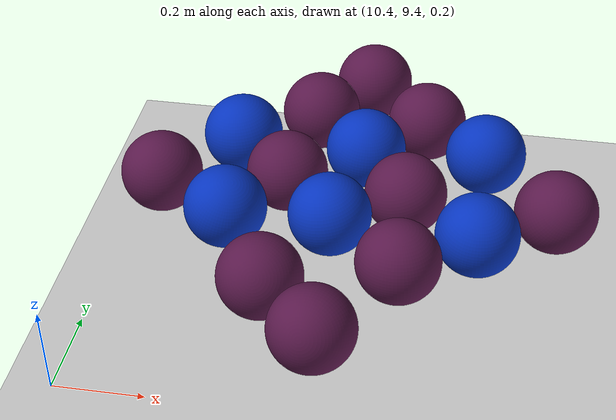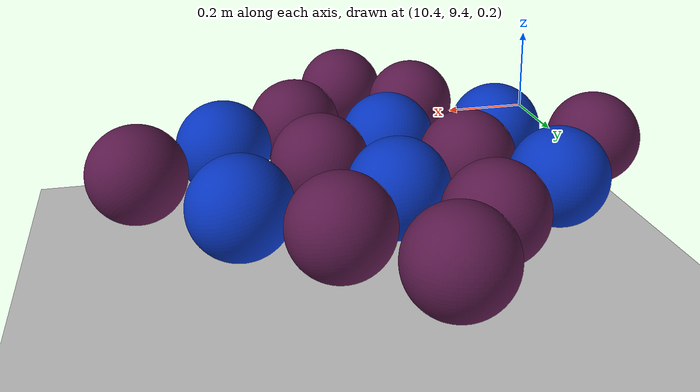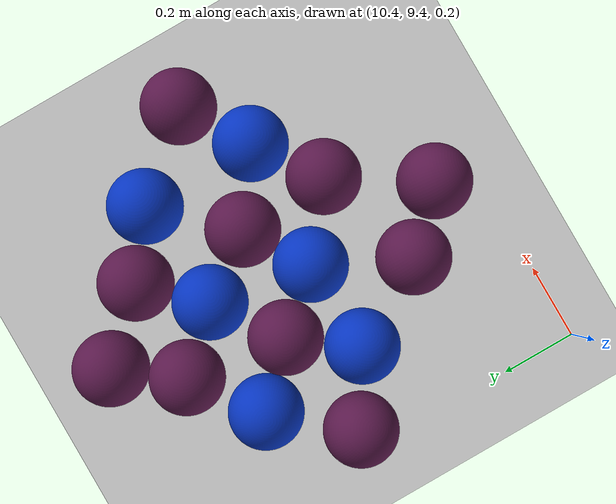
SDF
<sdf version="1.7">
 <world name="default">
  <light name="sun" type="directional">
   <pose>0 0 10 0 -0 0</pose>
   <diffuse>0.8 0.8 0.8 1</diffuse>
   <specular>0.2 0.2 0.2 1</specular>
   <attenuation>
    <range>1000</range>
    <constant>0.9</constant>
    <linear>0.01</linear>
    <quadratic>0.001</quadratic>
   </attenuation>
   <direction>-0.5 0.1 -0.9</direction>
   <spot><inner_angle>0</inner_angle><outer_angle>0</outer_angle><falloff>0</falloff></spot>
  </light>
  <model name="ground_plane">
   <static>1</static>
   <link name="link">
    <collision name="collision">
     <geometry><plane><normal>0 0 1</normal><size>100 100</size></plane></geometry>
     <surface>
      <contact><collide_bitmask>65535</collide_bitmask></contact>
      <friction><ode><mu>100</mu><mu2>50</mu2></ode></friction>
     </surface>
    </collision>
    <visual name="visual">
     <cast_shadows>0</cast_shadows>
     <geometry><plane><normal>0 0 1</normal><size>100 100</size></plane></geometry>
     <material>
      <script><uri>file://media/materials/scripts/gazebo.material</uri><name>Gazebo/Grey</name></script>
     </material>
    </visual>
   </link>
  </model>
  <gravity>0 0 -9.8</gravity>
  <magnetic_field>6e-06 2.3e-05 -4.2e-05</magnetic_field>
  <atmosphere type="adiabatic"/>
  <physics type="ode">
   <max_step_size>0.001</max_step_size>
   <real_time_factor>1</real_time_factor>
   <real_time_update_rate>1000</real_time_update_rate>
  </physics>
  <scene><ambient>0.4 0.4 0.4 1</ambient><background>0.7 0.7 0.7 1</background><shadows>1</shadows></scene>
  <audio><device>default</device></audio>
  <spherical_coordinates>
   <surface_model>EARTH_WGS84</surface_model>
   <latitude_deg>0</latitude_deg>
   <longitude_deg>0</longitude_deg>
   <elevation>0</elevation>
   <heading_deg>0</heading_deg>
  </spherical_coordinates>
  <model name="ball_empty_0">
   <link name="link_1">
    <inertial>
     <mass>1</mass>
     <inertia>
      <ixx>0.166667</ixx>
      <ixy>0</ixy>
      <ixz>0</ixz>
      <iyy>0.166667</iyy>
      <iyz>0</iyz>
      <izz>0.166667</izz>
     </inertia>
    </inertial>
    <visual name="visual">
     <geometry>
      <mesh>
       <uri>/home/entity014/abu2024_ws/src/abu_description/worlds/ball_empty.dae</uri>
       <scale>1 1 1</scale>
      </mesh>
     </geometry>
    </visual>
    <collision name="collision">
     <geometry>
      <mesh>
       <uri>/home/entity014/abu2024_ws/src/abu_description/worlds/ball_empty.dae</uri>
       <scale>1 1 1</scale>
      </mesh>
     </geometry>
     <surface>
      <friction>
       <ode><mu>1</mu><mu2>1</mu2><fdir1>0 0 0</fdir1><slip1>0</slip1><slip2>0</slip2></ode>
       <torsional>
        <coefficient>1</coefficient>
        <patch_radius>0</patch_radius>
        <surface_radius>0</surface_radius>
        <use_patch_radius>1</use_patch_radius>
        <ode><slip>0</slip></ode>
       </torsional>
      </friction>
      <bounce><restitution_coefficient>0</restitution_coefficient><threshold>1e+06</threshold></bounce>
      <contact>
       <collide_without_contact>0</collide_without_contact>
       <collide_without_contact_bitmask>1</collide_without_contact_bitmask>
       <collide_bitmask>1</collide_bitmask>
       <ode>
        <soft_cfm>0</soft_cfm>
        <soft_erp>0.2</soft_erp>
        <kp>1e+13</kp>
        <kd>1</kd>
        <max_vel>0.01</max_vel>
        <min_depth>0</min_depth>
       </ode>
       <bullet>
        <split_impulse>1</split_impulse>
        <split_impulse_penetration_threshold>-0.01</split_impulse_penetration_threshold>
        <soft_cfm>0</soft_cfm>
        <soft_erp>0.2</soft_erp>
        <kp>1e+13</kp>
        <kd>1</kd>
       </bullet>
      </contact>
     </surface>
    </collision>
   </link>
   <static>0</static>
   <pose>10.9242 9.52841 0.322529 1.07114 -0.089637 -0.085996</pose>
  </model>
  <model name="ball_blue_5">
   <link name="link_1">
    <inertial>
     <mass>1</mass>
     <inertia>
      <ixx>0.166667</ixx>
      <ixy>0</ixy>
      <ixz>0</ixz>
      <iyy>0.166667</iyy>
      <iyz>0</iyz>
      <izz>0.166667</izz>
     </inertia>
    </inertial>
    <visual name="visual">
     <geometry>
      <mesh>
       <uri>/home/entity014/abu2024_ws/src/abu_description/worlds/ball_blue.dae</uri>
       <scale>1 1 1</scale>
      </mesh>
     </geometry>
    </visual>
    <collision name="collision">
     <geometry>
      <mesh>
       <uri>/home/entity014/abu2024_ws/src/abu_description/worlds/ball_blue.dae</uri>
       <scale>1 1 1</scale>
      </mesh>
     </geometry>
     <surface>
      <friction>
       <ode><mu>1</mu><mu2>1</mu2><fdir1>0 0 0</fdir1><slip1>0</slip1><slip2>0</slip2></ode>
       <torsional>
        <coefficient>1</coefficient>
        <patch_radius>0</patch_radius>
        <surface_radius>0</surface_radius>
        <use_patch_radius>1</use_patch_radius>
        <ode><slip>0</slip></ode>
       </torsional>
      </friction>
      <bounce><restitution_coefficient>0</restitution_coefficient><threshold>1e+06</threshold></bounce>
      <contact>
       <collide_without_contact>0</collide_without_contact>
       <collide_without_contact_bitmask>1</collide_without_contact_bitmask>
       <collide_bitmask>1</collide_bitmask>
       <ode>
        <soft_cfm>0</soft_cfm>
        <soft_erp>0.2</soft_erp>
        <kp>1e+13</kp>
        <kd>1</kd>
        <max_vel>0.01</max_vel>
        <min_depth>0</min_depth>
       </ode>
       <bullet>
        <split_impulse>1</split_impulse>
        <split_impulse_penetration_threshold>-0.01</split_impulse_penetration_threshold>
        <soft_cfm>0</soft_cfm>
        <soft_erp>0.2</soft_erp>
        <kp>1e+13</kp>
        <kd>1</kd>
       </bullet>
      </contact>
     </surface>
    </collision>
   </link>
   <static>0</static>
   <pose>11.2335 9.87764 0.322565 0.158713 0.135175 -0.516315</pose>
  </model>
  <model name="ball_empty_0_clone">
   <link name="link_1">
    <inertial>
     <mass>1</mass>
     <inertia>
      <ixx>0.166667</ixx>
      <ixy>0</ixy>
      <ixz>0</ixz>
      <iyy>0.166667</iyy>
      <iyz>0</iyz>
      <izz>0.166667</izz>
     </inertia>
    </inertial>
    <visual name="visual">
     <geometry>
      <mesh>
       <uri>/home/entity014/abu2024_ws/src/abu_description/worlds/ball_empty.dae</uri>
       <scale>1 1 1</scale>
      </mesh>
     </geometry>
    </visual>
    <collision name="collision">
     <geometry>
      <mesh>
       <uri>/home/entity014/abu2024_ws/src/abu_description/worlds/ball_empty.dae</uri>
       <scale>1 1 1</scale>
      </mesh>
     </geometry>
     <surface>
      <friction>
       <ode><mu>1</mu><mu2>1</mu2><fdir1>0 0 0</fdir1><slip1>0</slip1><slip2>0</slip2></ode>
       <torsional>
        <coefficient>1</coefficient>
        <patch_radius>0</patch_radius>
        <surface_radius>0</surface_radius>
        <use_patch_radius>1</use_patch_radius>
        <ode><slip>0</slip></ode>
       </torsional>
      </friction>
      <bounce><restitution_coefficient>0</restitution_coefficient><threshold>1e+06</threshold></bounce>
      <contact>
       <collide_without_contact>0</collide_without_contact>
       <collide_without_contact_bitmask>1</collide_without_contact_bitmask>
       <collide_bitmask>1</collide_bitmask>
       <ode>
        <soft_cfm>0</soft_cfm>
        <soft_erp>0.2</soft_erp>
        <kp>1e+13</kp>
        <kd>1</kd>
        <max_vel>0.01</max_vel>
        <min_depth>0</min_depth>
       </ode>
       <bullet>
        <split_impulse>1</split_impulse>
        <split_impulse_penetration_threshold>-0.01</split_impulse_penetration_threshold>
        <soft_cfm>0</soft_cfm>
        <soft_erp>0.2</soft_erp>
        <kp>1e+13</kp>
        <kd>1</kd>
       </bullet>
      </contact>
     </surface>
    </collision>
   </link>
   <static>0</static>
   <pose>10.7866 9.66794 0.322538 0.91365 -0.016456 0.033509</pose>
  </model>
  <model name="ball_empty_0_clone_0">
   <link name="link_1">
    <inertial>
     <mass>1</mass>
     <inertia>
      <ixx>0.166667</ixx>
      <ixy>0</ixy>
      <ixz>0</ixz>
      <iyy>0.166667</iyy>
      <iyz>0</iyz>
      <izz>0.166667</izz>
     </inertia>
    </inertial>
    <visual name="visual">
     <geometry>
      <mesh>
       <uri>/home/entity014/abu2024_ws/src/abu_description/worlds/ball_empty.dae</uri>
       <scale>1 1 1</scale>
      </mesh>
     </geometry>
    </visual>
    <collision name="collision">
     <geometry>
      <mesh>
       <uri>/home/entity014/abu2024_ws/src/abu_description/worlds/ball_empty.dae</uri>
       <scale>1 1 1</scale>
      </mesh>
     </geometry>
     <surface>
      <friction>
       <ode><mu>1</mu><mu2>1</mu2><fdir1>0 0 0</fdir1><slip1>0</slip1><slip2>0</slip2></ode>
       <torsional>
        <coefficient>1</coefficient>
        <patch_radius>0</patch_radius>
        <surface_radius>0</surface_radius>
        <use_patch_radius>1</use_patch_radius>
        <ode><slip>0</slip></ode>
       </torsional>
      </friction>
      <bounce><restitution_coefficient>0</restitution_coefficient><threshold>1e+06</threshold></bounce>
      <contact>
       <collide_without_contact>0</collide_without_contact>
       <collide_without_contact_bitmask>1</collide_without_contact_bitmask>
       <collide_bitmask>1</collide_bitmask>
       <ode>
        <soft_cfm>0</soft_cfm>
        <soft_erp>0.2</soft_erp>
        <kp>1e+13</kp>
        <kd>1</kd>
        <max_vel>0.01</max_vel>
        <min_depth>0</min_depth>
       </ode>
       <bullet>
        <split_impulse>1</split_impulse>
        <split_impulse_penetration_threshold>-0.01</split_impulse_penetration_threshold>
        <soft_cfm>0</soft_cfm>
        <soft_erp>0.2</soft_erp>
        <kp>1e+13</kp>
        <kd>1</kd>
       </bullet>
      </contact>
     </surface>
    </collision>
   </link>
   <static>0</static>
   <pose>11.0716 9.7614 0.322554 -0.028878 -0.02828 -0.085092</pose>
  </model>
  <model name="ball_empty_0_clone_1">
   <link name="link_1">
    <inertial>
     <mass>1</mass>
     <inertia>
      <ixx>0.166667</ixx>
      <ixy>0</ixy>
      <ixz>0</ixz>
      <iyy>0.166667</iyy>
      <iyz>0</iyz>
      <izz>0.166667</izz>
     </inertia>
    </inertial>
    <visual name="visual">
     <geometry>
      <mesh>
       <uri>/home/entity014/abu2024_ws/src/abu_description/worlds/ball_empty.dae</uri>
       <scale>1 1 1</scale>
      </mesh>
     </geometry>
    </visual>
    <collision name="collision">
     <geometry>
      <mesh>
       <uri>/home/entity014/abu2024_ws/src/abu_description/worlds/ball_empty.dae</uri>
       <scale>1 1 1</scale>
      </mesh>
     </geometry>
     <surface>
      <friction>
       <ode><mu>1</mu><mu2>1</mu2><fdir1>0 0 0</fdir1><slip1>0</slip1><slip2>0</slip2></ode>
       <torsional>
        <coefficient>1</coefficient>
        <patch_radius>0</patch_radius>
        <surface_radius>0</surface_radius>
        <use_patch_radius>1</use_patch_radius>
        <ode><slip>0</slip></ode>
       </torsional>
      </friction>
      <bounce><restitution_coefficient>0</restitution_coefficient><threshold>1e+06</threshold></bounce>
      <contact>
       <collide_without_contact>0</collide_without_contact>
       <collide_without_contact_bitmask>1</collide_without_contact_bitmask>
       <collide_bitmask>1</collide_bitmask>
       <ode>
        <soft_cfm>0</soft_cfm>
        <soft_erp>0.2</soft_erp>
        <kp>1e+13</kp>
        <kd>1</kd>
        <max_vel>0.01</max_vel>
        <min_depth>0</min_depth>
       </ode>
       <bullet>
        <split_impulse>1</split_impulse>
        <split_impulse_penetration_threshold>-0.01</split_impulse_penetration_threshold>
        <soft_cfm>0</soft_cfm>
        <soft_erp>0.2</soft_erp>
        <kp>1e+13</kp>
        <kd>1</kd>
       </bullet>
      </contact>
     </surface>
    </collision>
   </link>
   <static>0</static>
   <pose>10.4818 9.99502 0.322538 0.247082 -0.268309 0.812734</pose>
  </model>
  <model name="ball_empty_0_clone_2">
   <link name="link_1">
    <inertial>
     <mass>1</mass>
     <inertia>
      <ixx>0.166667</ixx>
      <ixy>0</ixy>
      <ixz>0</ixz>
      <iyy>0.166667</iyy>
      <iyz>0</iyz>
      <izz>0.166667</izz>
     </inertia>
    </inertial>
    <visual name="visual">
     <geometry>
      <mesh>
       <uri>/home/entity014/abu2024_ws/src/abu_description/worlds/ball_empty.dae</uri>
       <scale>1 1 1</scale>
      </mesh>
     </geometry>
    </visual>
    <collision name="collision">
     <geometry>
      <mesh>
       <uri>/home/entity014/abu2024_ws/src/abu_description/worlds/ball_empty.dae</uri>
       <scale>1 1 1</scale>
      </mesh>
     </geometry>
     <surface>
      <friction>
       <ode><mu>1</mu><mu2>1</mu2><fdir1>0 0 0</fdir1><slip1>0</slip1><slip2>0</slip2></ode>
       <torsional>
        <coefficient>1</coefficient>
        <patch_radius>0</patch_radius>
        <surface_radius>0</surface_radius>
        <use_patch_radius>1</use_patch_radius>
        <ode><slip>0</slip></ode>
       </torsional>
      </friction>
      <bounce><restitution_coefficient>0</restitution_coefficient><threshold>1e+06</threshold></bounce>
      <contact>
       <collide_without_contact>0</collide_without_contact>
       <collide_without_contact_bitmask>1</collide_without_contact_bitmask>
       <collide_bitmask>1</collide_bitmask>
       <ode>
        <soft_cfm>0</soft_cfm>
        <soft_erp>0.2</soft_erp>
        <kp>1e+13</kp>
        <kd>1</kd>
        <max_vel>0.01</max_vel>
        <min_depth>0</min_depth>
       </ode>
       <bullet>
        <split_impulse>1</split_impulse>
        <split_impulse_penetration_threshold>-0.01</split_impulse_penetration_threshold>
        <soft_cfm>0</soft_cfm>
        <soft_erp>0.2</soft_erp>
        <kp>1e+13</kp>
        <kd>1</kd>
       </bullet>
      </contact>
     </surface>
    </collision>
   </link>
   <static>0</static>
   <pose>10.7732 10.0429 0.322555 -0.091461 -0.083872 0.491186</pose>
  </model>
  <model name="ball_empty_0_clone_3">
   <link name="link_1">
    <inertial>
     <mass>1</mass>
     <inertia>
      <ixx>0.166667</ixx>
      <ixy>0</ixy>
      <ixz>0</ixz>
      <iyy>0.166667</iyy>
      <iyz>0</iyz>
      <izz>0.166667</izz>
     </inertia>
    </inertial>
    <visual name="visual">
     <geometry>
      <mesh>
       <uri>/home/entity014/abu2024_ws/src/abu_description/worlds/ball_empty.dae</uri>
       <scale>1 1 1</scale>
      </mesh>
     </geometry>
    </visual>
    <collision name="collision">
     <geometry>
      <mesh>
       <uri>/home/entity014/abu2024_ws/src/abu_description/worlds/ball_empty.dae</uri>
       <scale>1 1 1</scale>
      </mesh>
     </geometry>
     <surface>
      <friction>
       <ode><mu>1</mu><mu2>1</mu2><fdir1>0 0 0</fdir1><slip1>0</slip1><slip2>0</slip2></ode>
       <torsional>
        <coefficient>1</coefficient>
        <patch_radius>0</patch_radius>
        <surface_radius>0</surface_radius>
        <use_patch_radius>1</use_patch_radius>
        <ode><slip>0</slip></ode>
       </torsional>
      </friction>
      <bounce><restitution_coefficient>0</restitution_coefficient><threshold>1e+06</threshold></bounce>
      <contact>
       <collide_without_contact>0</collide_without_contact>
       <collide_without_contact_bitmask>1</collide_without_contact_bitmask>
       <collide_bitmask>1</collide_bitmask>
       <ode>
        <soft_cfm>0</soft_cfm>
        <soft_erp>0.2</soft_erp>
        <kp>1e+13</kp>
        <kd>1</kd>
        <max_vel>0.01</max_vel>
        <min_depth>0</min_depth>
       </ode>
       <bullet>
        <split_impulse>1</split_impulse>
        <split_impulse_penetration_threshold>-0.01</split_impulse_penetration_threshold>
        <soft_cfm>0</soft_cfm>
        <soft_erp>0.2</soft_erp>
        <kp>1e+13</kp>
        <kd>1</kd>
       </bullet>
      </contact>
     </surface>
    </collision>
   </link>
   <static>0</static>
   <pose>11.0587 10.0007 0.322609 0.213184 0.263898 -2.08329</pose>
  </model>
  <model name="ball_empty_0_clone_4">
   <link name="link_1">
    <inertial>
     <mass>1</mass>
     <inertia>
      <ixx>0.166667</ixx>
      <ixy>0</ixy>
      <ixz>0</ixz>
      <iyy>0.166667</iyy>
      <iyz>0</iyz>
      <izz>0.166667</izz>
     </inertia>
    </inertial>
    <visual name="visual">
     <geometry>
      <mesh>
       <uri>/home/entity014/abu2024_ws/src/abu_description/worlds/ball_empty.dae</uri>
       <scale>1 1 1</scale>
      </mesh>
     </geometry>
    </visual>
    <collision name="collision">
     <geometry>
      <mesh>
       <uri>/home/entity014/abu2024_ws/src/abu_description/worlds/ball_empty.dae</uri>
       <scale>1 1 1</scale>
      </mesh>
     </geometry>
     <surface>
      <friction>
       <ode><mu>1</mu><mu2>1</mu2><fdir1>0 0 0</fdir1><slip1>0</slip1><slip2>0</slip2></ode>
       <torsional>
        <coefficient>1</coefficient>
        <patch_radius>0</patch_radius>
        <surface_radius>0</surface_radius>
        <use_patch_radius>1</use_patch_radius>
        <ode><slip>0</slip></ode>
       </torsional>
      </friction>
      <bounce><restitution_coefficient>0</restitution_coefficient><threshold>1e+06</threshold></bounce>
      <contact>
       <collide_without_contact>0</collide_without_contact>
       <collide_without_contact_bitmask>1</collide_without_contact_bitmask>
       <collide_bitmask>1</collide_bitmask>
       <ode>
        <soft_cfm>0</soft_cfm>
        <soft_erp>0.2</soft_erp>
        <kp>1e+13</kp>
        <kd>1</kd>
        <max_vel>0.01</max_vel>
        <min_depth>0</min_depth>
       </ode>
       <bullet>
        <split_impulse>1</split_impulse>
        <split_impulse_penetration_threshold>-0.01</split_impulse_penetration_threshold>
        <soft_cfm>0</soft_cfm>
        <soft_erp>0.2</soft_erp>
        <kp>1e+13</kp>
        <kd>1</kd>
       </bullet>
      </contact>
     </surface>
    </collision>
   </link>
   <static>0</static>
   <pose>11.403 9.98631 0.322598 0.479191 0.536762 -0.200918</pose>
  </model>
  <model name="ball_empty_0_clone_5">
   <link name="link_1">
    <inertial>
     <mass>1</mass>
     <inertia>
      <ixx>0.166667</ixx>
      <ixy>0</ixy>
      <ixz>0</ixz>
      <iyy>0.166667</iyy>
      <iyz>0</iyz>
      <izz>0.166667</izz>
     </inertia>
    </inertial>
    <visual name="visual">
     <geometry>
      <mesh>
       <uri>/home/entity014/abu2024_ws/src/abu_description/worlds/ball_empty.dae</uri>
       <scale>1 1 1</scale>
      </mesh>
     </geometry>
    </visual>
    <collision name="collision">
     <geometry>
      <mesh>
       <uri>/home/entity014/abu2024_ws/src/abu_description/worlds/ball_empty.dae</uri>
       <scale>1 1 1</scale>
      </mesh>
     </geometry>
     <surface>
      <friction>
       <ode><mu>1</mu><mu2>1</mu2><fdir1>0 0 0</fdir1><slip1>0</slip1><slip2>0</slip2></ode>
       <torsional>
        <coefficient>1</coefficient>
        <patch_radius>0</patch_radius>
        <surface_radius>0</surface_radius>
        <use_patch_radius>1</use_patch_radius>
        <ode><slip>0</slip></ode>
       </torsional>
      </friction>
      <bounce><restitution_coefficient>0</restitution_coefficient><threshold>1e+06</threshold></bounce>
      <contact>
       <collide_without_contact>0</collide_without_contact>
       <collide_without_contact_bitmask>1</collide_without_contact_bitmask>
       <collide_bitmask>1</collide_bitmask>
       <ode>
        <soft_cfm>0</soft_cfm>
        <soft_erp>0.2</soft_erp>
        <kp>1e+13</kp>
        <kd>1</kd>
        <max_vel>0.01</max_vel>
        <min_depth>0</min_depth>
       </ode>
       <bullet>
        <split_impulse>1</split_impulse>
        <split_impulse_penetration_threshold>-0.01</split_impulse_penetration_threshold>
        <soft_cfm>0</soft_cfm>
        <soft_erp>0.2</soft_erp>
        <kp>1e+13</kp>
        <kd>1</kd>
       </bullet>
      </contact>
     </surface>
    </collision>
   </link>
   <static>0</static>
   <pose>10.8094 10.3038 0.322541 0.166108 0.229963 0.124252</pose>
  </model>
  <model name="ball_empty_0_clone_6">
   <link name="link_1">
    <inertial>
     <mass>1</mass>
     <inertia>
      <ixx>0.166667</ixx>
      <ixy>0</ixy>
      <ixz>0</ixz>
      <iyy>0.166667</iyy>
      <iyz>0</iyz>
      <izz>0.166667</izz>
     </inertia>
    </inertial>
    <visual name="visual">
     <geometry>
      <mesh>
       <uri>/home/entity014/abu2024_ws/src/abu_description/worlds/ball_empty.dae</uri>
       <scale>1 1 1</scale>
      </mesh>
     </geometry>
    </visual>
    <collision name="collision">
     <geometry>
      <mesh>
       <uri>/home/entity014/abu2024_ws/src/abu_description/worlds/ball_empty.dae</uri>
       <scale>1 1 1</scale>
      </mesh>
     </geometry>
     <surface>
      <friction>
       <ode><mu>1</mu><mu2>1</mu2><fdir1>0 0 0</fdir1><slip1>0</slip1><slip2>0</slip2></ode>
       <torsional>
        <coefficient>1</coefficient>
        <patch_radius>0</patch_radius>
        <surface_radius>0</surface_radius>
        <use_patch_radius>1</use_patch_radius>
        <ode><slip>0</slip></ode>
       </torsional>
      </friction>
      <bounce><restitution_coefficient>0</restitution_coefficient><threshold>1e+06</threshold></bounce>
      <contact>
       <collide_without_contact>0</collide_without_contact>
       <collide_without_contact_bitmask>1</collide_without_contact_bitmask>
       <collide_bitmask>1</collide_bitmask>
       <ode>
        <soft_cfm>0</soft_cfm>
        <soft_erp>0.2</soft_erp>
        <kp>1e+13</kp>
        <kd>1</kd>
        <max_vel>0.01</max_vel>
        <min_depth>0</min_depth>
       </ode>
       <bullet>
        <split_impulse>1</split_impulse>
        <split_impulse_penetration_threshold>-0.01</split_impulse_penetration_threshold>
        <soft_cfm>0</soft_cfm>
        <soft_erp>0.2</soft_erp>
        <kp>1e+13</kp>
        <kd>1</kd>
       </bullet>
      </contact>
     </surface>
    </collision>
   </link>
   <static>0</static>
   <pose>11.076 10.2977 0.322568 0.260319 0.089567 -0.035736</pose>
  </model>
  <model name="ball_empty_0_clone_7">
   <link name="link_1">
    <inertial>
     <mass>1</mass>
     <inertia>
      <ixx>0.166667</ixx>
      <ixy>0</ixy>
      <ixz>0</ixz>
      <iyy>0.166667</iyy>
      <iyz>0</iyz>
      <izz>0.166667</izz>
     </inertia>
    </inertial>
    <visual name="visual">
     <geometry>
      <mesh>
       <uri>/home/entity014/abu2024_ws/src/abu_description/worlds/ball_empty.dae</uri>
       <scale>1 1 1</scale>
      </mesh>
     </geometry>
    </visual>
    <collision name="collision">
     <geometry>
      <mesh>
       <uri>/home/entity014/abu2024_ws/src/abu_description/worlds/ball_empty.dae</uri>
       <scale>1 1 1</scale>
      </mesh>
     </geometry>
     <surface>
      <friction>
       <ode><mu>1</mu><mu2>1</mu2><fdir1>0 0 0</fdir1><slip1>0</slip1><slip2>0</slip2></ode>
       <torsional>
        <coefficient>1</coefficient>
        <patch_radius>0</patch_radius>
        <surface_radius>0</surface_radius>
        <use_patch_radius>1</use_patch_radius>
        <ode><slip>0</slip></ode>
       </torsional>
      </friction>
      <bounce><restitution_coefficient>0</restitution_coefficient><threshold>1e+06</threshold></bounce>
      <contact>
       <collide_without_contact>0</collide_without_contact>
       <collide_without_contact_bitmask>1</collide_without_contact_bitmask>
       <collide_bitmask>1</collide_bitmask>
       <ode>
        <soft_cfm>0</soft_cfm>
        <soft_erp>0.2</soft_erp>
        <kp>1e+13</kp>
        <kd>1</kd>
        <max_vel>0.01</max_vel>
        <min_depth>0</min_depth>
       </ode>
       <bullet>
        <split_impulse>1</split_impulse>
        <split_impulse_penetration_threshold>-0.01</split_impulse_penetration_threshold>
        <soft_cfm>0</soft_cfm>
        <soft_erp>0.2</soft_erp>
        <kp>1e+13</kp>
        <kd>1</kd>
       </bullet>
      </contact>
     </surface>
    </collision>
   </link>
   <static>0</static>
   <pose>10.9231 10.4565 0.322544 0.023178 -0.032823 -0.028501</pose>
  </model>
  <model name="ball_blue_5_clone">
   <link name="link_1">
    <inertial>
     <mass>1</mass>
     <inertia>
      <ixx>0.166667</ixx>
      <ixy>0</ixy>
      <ixz>0</ixz>
      <iyy>0.166667</iyy>
      <iyz>0</iyz>
      <izz>0.166667</izz>
     </inertia>
    </inertial>
    <visual name="visual">
     <geometry>
      <mesh>
       <uri>/home/entity014/abu2024_ws/src/abu_description/worlds/ball_blue.dae</uri>
       <scale>1 1 1</scale>
      </mesh>
     </geometry>
    </visual>
    <collision name="collision">
     <geometry>
      <mesh>
       <uri>/home/entity014/abu2024_ws/src/abu_description/worlds/ball_blue.dae</uri>
       <scale>1 1 1</scale>
      </mesh>
     </geometry>
     <surface>
      <friction>
       <ode><mu>1</mu><mu2>1</mu2><fdir1>0 0 0</fdir1><slip1>0</slip1><slip2>0</slip2></ode>
       <torsional>
        <coefficient>1</coefficient>
        <patch_radius>0</patch_radius>
        <surface_radius>0</surface_radius>
        <use_patch_radius>1</use_patch_radius>
        <ode><slip>0</slip></ode>
       </torsional>
      </friction>
      <bounce><restitution_coefficient>0</restitution_coefficient><threshold>1e+06</threshold></bounce>
      <contact>
       <collide_without_contact>0</collide_without_contact>
       <collide_without_contact_bitmask>1</collide_without_contact_bitmask>
       <collide_bitmask>1</collide_bitmask>
       <ode>
        <soft_cfm>0</soft_cfm>
        <soft_erp>0.2</soft_erp>
        <kp>1e+13</kp>
        <kd>1</kd>
        <max_vel>0.01</max_vel>
        <min_depth>0</min_depth>
       </ode>
       <bullet>
        <split_impulse>1</split_impulse>
        <split_impulse_penetration_threshold>-0.01</split_impulse_penetration_threshold>
        <soft_cfm>0</soft_cfm>
        <soft_erp>0.2</soft_erp>
        <kp>1e+13</kp>
        <kd>1</kd>
       </bullet>
      </contact>
     </surface>
    </collision>
   </link>
   <static>0</static>
   <pose>10.8986 9.89867 0.322488 -0.103766 -0.172954 0.660639</pose>
  </model>
  <model name="ball_blue_5_clone_0">
   <link name="link_1">
    <inertial>
     <mass>1</mass>
     <inertia>
      <ixx>0.166667</ixx>
      <ixy>0</ixy>
      <ixz>0</ixz>
      <iyy>0.166667</iyy>
      <iyz>0</iyz>
      <izz>0.166667</izz>
     </inertia>
    </inertial>
    <visual name="visual">
     <geometry>
      <mesh>
       <uri>/home/entity014/abu2024_ws/src/abu_description/worlds/ball_blue.dae</uri>
       <scale>1 1 1</scale>
      </mesh>
     </geometry>
    </visual>
    <collision name="collision">
     <geometry>
      <mesh>
       <uri>/home/entity014/abu2024_ws/src/abu_description/worlds/ball_blue.dae</uri>
       <scale>1 1 1</scale>
      </mesh>
     </geometry>
     <surface>
      <friction>
       <ode><mu>1</mu><mu2>1</mu2><fdir1>0 0 0</fdir1><slip1>0</slip1><slip2>0</slip2></ode>
       <torsional>
        <coefficient>1</coefficient>
        <patch_radius>0</patch_radius>
        <surface_radius>0</surface_radius>
        <use_patch_radius>1</use_patch_radius>
        <ode><slip>0</slip></ode>
       </torsional>
      </friction>
      <bounce><restitution_coefficient>0</restitution_coefficient><threshold>1e+06</threshold></bounce>
      <contact>
       <collide_without_contact>0</collide_without_contact>
       <collide_without_contact_bitmask>1</collide_without_contact_bitmask>
       <collide_bitmask>1</collide_bitmask>
       <ode>
        <soft_cfm>0</soft_cfm>
        <soft_erp>0.2</soft_erp>
        <kp>1e+13</kp>
        <kd>1</kd>
        <max_vel>0.01</max_vel>
        <min_depth>0</min_depth>
       </ode>
       <bullet>
        <split_impulse>1</split_impulse>
        <split_impulse_penetration_threshold>-0.01</split_impulse_penetration_threshold>
        <soft_cfm>0</soft_cfm>
        <soft_erp>0.2</soft_erp>
        <kp>1e+13</kp>
        <kd>1</kd>
       </bullet>
      </contact>
     </surface>
    </collision>
   </link>
   <static>0</static>
   <pose>10.6593 9.88879 0.322538 0.235526 0.278334 -0.144465</pose>
  </model>
  <model name="ball_blue_5_clone_1">
   <link name="link_1">
    <inertial>
     <mass>1</mass>
     <inertia>
      <ixx>0.166667</ixx>
      <ixy>0</ixy>
      <ixz>0</ixz>
      <iyy>0.166667</iyy>
      <iyz>0</iyz>
      <izz>0.166667</izz>
     </inertia>
    </inertial>
    <visual name="visual">
     <geometry>
      <mesh>
       <uri>/home/entity014/abu2024_ws/src/abu_description/worlds/ball_blue.dae</uri>
       <scale>1 1 1</scale>
      </mesh>
     </geometry>
    </visual>
    <collision name="collision">
     <geometry>
      <mesh>
       <uri>/home/entity014/abu2024_ws/src/abu_description/worlds/ball_blue.dae</uri>
       <scale>1 1 1</scale>
      </mesh>
     </geometry>
     <surface>
      <friction>
       <ode><mu>1</mu><mu2>1</mu2><fdir1>0 0 0</fdir1><slip1>0</slip1><slip2>0</slip2></ode>
       <torsional>
        <coefficient>1</coefficient>
        <patch_radius>0</patch_radius>
        <surface_radius>0</surface_radius>
        <use_patch_radius>1</use_patch_radius>
        <ode><slip>0</slip></ode>
       </torsional>
      </friction>
      <bounce><restitution_coefficient>0</restitution_coefficient><threshold>1e+06</threshold></bounce>
      <contact>
       <collide_without_contact>0</collide_without_contact>
       <collide_without_contact_bitmask>1</collide_without_contact_bitmask>
       <collide_bitmask>1</collide_bitmask>
       <ode>
        <soft_cfm>0</soft_cfm>
        <soft_erp>0.2</soft_erp>
        <kp>1e+13</kp>
        <kd>1</kd>
        <max_vel>0.01</max_vel>
        <min_depth>0</min_depth>
       </ode>
       <bullet>
        <split_impulse>1</split_impulse>
        <split_impulse_penetration_threshold>-0.01</split_impulse_penetration_threshold>
        <soft_cfm>0</soft_cfm>
        <soft_erp>0.2</soft_erp>
        <kp>1e+13</kp>
        <kd>1</kd>
       </bullet>
      </contact>
     </surface>
    </collision>
   </link>
   <static>0</static>
   <pose>10.6379 10.1767 0.322545 0.058245 -0.105636 -0.369862</pose>
  </model>
  <model name="ball_blue_5_clone_2">
   <link name="link_1">
    <inertial>
     <mass>1</mass>
     <inertia>
      <ixx>0.166667</ixx>
      <ixy>0</ixy>
      <ixz>0</ixz>
      <iyy>0.166667</iyy>
      <iyz>0</iyz>
      <izz>0.166667</izz>
     </inertia>
    </inertial>
    <visual name="visual">
     <geometry>
      <mesh>
       <uri>/home/entity014/abu2024_ws/src/abu_description/worlds/ball_blue.dae</uri>
       <scale>1 1 1</scale>
      </mesh>
     </geometry>
    </visual>
    <collision name="collision">
     <geometry>
      <mesh>
       <uri>/home/entity014/abu2024_ws/src/abu_description/worlds/ball_blue.dae</uri>
       <scale>1 1 1</scale>
      </mesh>
     </geometry>
     <surface>
      <friction>
       <ode><mu>1</mu><mu2>1</mu2><fdir1>0 0 0</fdir1><slip1>0</slip1><slip2>0</slip2></ode>
       <torsional>
        <coefficient>1</coefficient>
        <patch_radius>0</patch_radius>
        <surface_radius>0</surface_radius>
        <use_patch_radius>1</use_patch_radius>
        <ode><slip>0</slip></ode>
       </torsional>
      </friction>
      <bounce><restitution_coefficient>0</restitution_coefficient><threshold>1e+06</threshold></bounce>
      <contact>
       <collide_without_contact>0</collide_without_contact>
       <collide_without_contact_bitmask>1</collide_without_contact_bitmask>
       <collide_bitmask>1</collide_bitmask>
       <ode>
        <soft_cfm>0</soft_cfm>
        <soft_erp>0.2</soft_erp>
        <kp>1e+13</kp>
        <kd>1</kd>
        <max_vel>0.01</max_vel>
        <min_depth>0</min_depth>
       </ode>
       <bullet>
        <split_impulse>1</split_impulse>
        <split_impulse_penetration_threshold>-0.01</split_impulse_penetration_threshold>
        <soft_cfm>0</soft_cfm>
        <soft_erp>0.2</soft_erp>
        <kp>1e+13</kp>
        <kd>1</kd>
       </bullet>
      </contact>
     </surface>
    </collision>
   </link>
   <static>0</static>
   <pose>10.9429 10.1615 0.322543 0.195909 0.047307 0.199669</pose>
  </model>
  <model name="ball_blue_5_clone_3">
   <link name="link_1">
    <inertial>
     <mass>1</mass>
     <inertia>
      <ixx>0.166667</ixx>
      <ixy>0</ixy>
      <ixz>0</ixz>
      <iyy>0.166667</iyy>
      <iyz>0</iyz>
      <izz>0.166667</izz>
     </inertia>
    </inertial>
    <visual name="visual">
     <geometry>
      <mesh>
       <uri>/home/entity014/abu2024_ws/src/abu_description/worlds/ball_blue.dae</uri>
       <scale>1 1 1</scale>
      </mesh>
     </geometry>
    </visual>
    <collision name="collision">
     <geometry>
      <mesh>
       <uri>/home/entity014/abu2024_ws/src/abu_description/worlds/ball_blue.dae</uri>
       <scale>1 1 1</scale>
      </mesh>
     </geometry>
     <surface>
      <friction>
       <ode><mu>1</mu><mu2>1</mu2><fdir1>0 0 0</fdir1><slip1>0</slip1><slip2>0</slip2></ode>
       <torsional>
        <coefficient>1</coefficient>
        <patch_radius>0</patch_radius>
        <surface_radius>0</surface_radius>
        <use_patch_radius>1</use_patch_radius>
        <ode><slip>0</slip></ode>
       </torsional>
      </friction>
      <bounce><restitution_coefficient>0</restitution_coefficient><threshold>1e+06</threshold></bounce>
      <contact>
       <collide_without_contact>0</collide_without_contact>
       <collide_without_contact_bitmask>1</collide_without_contact_bitmask>
       <collide_bitmask>1</collide_bitmask>
       <ode>
        <soft_cfm>0</soft_cfm>
        <soft_erp>0.2</soft_erp>
        <kp>1e+13</kp>
        <kd>1</kd>
        <max_vel>0.01</max_vel>
        <min_depth>0</min_depth>
       </ode>
       <bullet>
        <split_impulse>1</split_impulse>
        <split_impulse_penetration_threshold>-0.01</split_impulse_penetration_threshold>
        <soft_cfm>0</soft_cfm>
        <soft_erp>0.2</soft_erp>
        <kp>1e+13</kp>
        <kd>1</kd>
       </bullet>
      </contact>
     </surface>
    </collision>
   </link>
   <static>0</static>
   <pose>11.2298 10.1822 0.322542 -0.040386 0.279125 -0.400149</pose>
  </model>
 </world>
</sdf>
